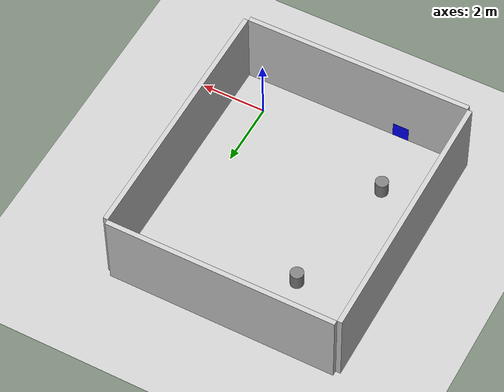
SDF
<sdf version="1.10">
 <world name="default">
  <physics name="1ms" type="ignored">
   <max_step_size>0.0040000000000000001</max_step_size>
   <real_time_factor>1</real_time_factor>
   <real_time_update_rate>200</real_time_update_rate>
  </physics>
  <plugin name="gz::sim::systems::Physics" filename="gz-sim-physics-system"/>
  <plugin name="gz::sim::systems::UserCommands" filename="gz-sim-user-commands-system"/>
  <plugin name="gz::sim::systems::SceneBroadcaster" filename="gz-sim-scene-broadcaster-system"/>
  <plugin name="gz::sim::systems::Contact" filename="gz-sim-contact-system"/>
  <gravity>0 0 -9.8000000000000007</gravity>
  <magnetic_field>6.0000000000000002e-06 2.3e-05 -4.1999999999999998e-05</magnetic_field>
  <atmosphere type="adiabatic"/>
  <scene>
   <ambient>0.400000006 0.400000006 0.400000006 1</ambient>
   <background>0.699999988 0.699999988 0.699999988 1</background>
   <shadows>false</shadows>
  </scene>
  <model name="ground_plane">
   <static>true</static>
   <link name="link">
    <collision name="collision">
     <geometry><plane><normal>0 0 1</normal><size>100 100</size></plane></geometry>
    </collision>
    <visual name="visual">
     <geometry><plane><normal>0 0 1</normal><size>100 100</size></plane></geometry>
     <material>
      <ambient>0.800000012 0.800000012 0.800000012 1</ambient>
      <diffuse>0.800000012 0.800000012 0.800000012 1</diffuse>
     </material>
    </visual>
    <inertial>
     <mass>1</mass>
     <inertia><ixx>1</ixx><ixy>0</ixy><ixz>0</ixz><iyy>1</iyy><iyz>0</iyz><izz>1</izz></inertia>
    </inertial>
   </link>
  </model>
  <model name="room">
   <static>true</static>
   <link name="wall_bottom">
    <pose>-2.5 -1.075 1.25 0 0 0</pose>
    <visual name="visual">
     <geometry><box><size>7 0.14999999999999999 2.5</size></box></geometry>
     <material>
      <ambient>0.699999988 0.699999988 0.699999988 1</ambient>
      <diffuse>0.800000012 0.800000012 0.800000012 1</diffuse>
     </material>
    </visual>
    <collision name="collision"><geometry><box><size>7 0.14999999999999999 2.5</size></box></geometry></collision>
    <inertial>
     <mass>1</mass>
     <inertia><ixx>1</ixx><ixy>0</ixy><ixz>0</ixz><iyy>1</iyy><iyz>0</iyz><izz>1</izz></inertia>
    </inertial>
   </link>
   <link name="wall_top">
    <pose>-2.5 7.0750000000000002 1.25 0 0 0</pose>
    <visual name="visual">
     <geometry><box><size>7 0.14999999999999999 2.5</size></box></geometry>
     <material>
      <ambient>0.699999988 0.699999988 0.699999988 1</ambient>
      <diffuse>0.800000012 0.800000012 0.800000012 1</diffuse>
     </material>
    </visual>
    <collision name="collision"><geometry><box><size>7 0.14999999999999999 2.5</size></box></geometry></collision>
    <inertial>
     <mass>1</mass>
     <inertia><ixx>1</ixx><ixy>0</ixy><ixz>0</ixz><iyy>1</iyy><iyz>0</iyz><izz>1</izz></inertia>
    </inertial>
   </link>
   <link name="wall_right">
    <pose>1.075 3 1.25 0 0 0</pose>
    <visual name="visual">
     <geometry><box><size>0.14999999999999999 8 2.5</size></box></geometry>
     <material>
      <ambient>0.699999988 0.699999988 0.699999988 1</ambient>
      <diffuse>0.800000012 0.800000012 0.800000012 1</diffuse>
     </material>
    </visual>
    <collision name="collision"><geometry><box><size>0.14999999999999999 8 2.5</size></box></geometry></collision>
    <inertial>
     <mass>1</mass>
     <inertia><ixx>1</ixx><ixy>0</ixy><ixz>0</ixz><iyy>1</iyy><iyz>0</iyz><izz>1</izz></inertia>
    </inertial>
   </link>
   <link name="wall_left">
    <pose>-6.0750000000000002 3 1.25 0 0 0</pose>
    <visual name="visual">
     <geometry><box><size>0.14999999999999999 8 2.5</size></box></geometry>
     <material>
      <ambient>0.699999988 0.699999988 0.699999988 1</ambient>
      <diffuse>0.800000012 0.800000012 0.800000012 1</diffuse>
     </material>
    </visual>
    <collision name="collision"><geometry><box><size>0.14999999999999999 8 2.5</size></box></geometry></collision>
    <inertial>
     <mass>1</mass>
     <inertia><ixx>1</ixx><ixy>0</ixy><ixz>0</ixz><iyy>1</iyy><iyz>0</iyz><izz>1</izz></inertia>
    </inertial>
   </link>
  </model>
  <model name="target_green">
   <static>true</static>
   <pose>-5.9984164237976074 3 0.24381899833679199 0 0 0</pose>
   <link name="link">
    <visual name="visual">
     <geometry><box><size>0.01 0.2 0.2</size></box></geometry>
     <material><ambient>0 1 0 1</ambient><diffuse>0 1 0 1</diffuse></material>
    </visual>
    <collision name="collision"><geometry><box><size>0.01 0.2 0.2</size></box></geometry></collision>
    <inertial>
     <mass>1</mass>
     <inertia><ixx>1</ixx><ixy>0</ixy><ixz>0</ixz><iyy>1</iyy><iyz>0</iyz><izz>1</izz></inertia>
    </inertial>
   </link>
  </model>
  <model name="target_red">
   <static>true</static>
   <pose>-2.5000002384185791 6.9930486679077148 0.24409900605678558 0 0 1.5708000357176291</pose>
   <link name="link">
    <visual name="visual">
     <geometry><box><size>0.01 0.5 0.5</size></box></geometry>
     <material><ambient>1 0 0 1</ambient><diffuse>1 0 0 1</diffuse></material>
    </visual>
    <collision name="collision"><geometry><box><size>0.01 0.5 0.5</size></box></geometry></collision>
    <inertial>
     <mass>1</mass>
     <inertia><ixx>1</ixx><ixy>0</ixy><ixz>0</ixz><iyy>1</iyy><iyz>0</iyz><izz>1</izz></inertia>
    </inertial>
   </link>
  </model>
  <model name="target_blue">
   <static>true</static>
   <pose>-4 -0.99378597736358643 0.25586780905723572 0 0 1.5708000357176291</pose>
   <link name="link">
    <visual name="visual">
     <geometry><box><size>0.01 0.5 0.5</size></box></geometry>
     <material><ambient>0 0 1 1</ambient><diffuse>0 0 1 1</diffuse></material>
    </visual>
    <collision name="collision"><geometry><box><size>0.01 0.5 0.5</size></box></geometry></collision>
    <inertial>
     <mass>1</mass>
     <inertia><ixx>1</ixx><ixy>0</ixy><ixz>0</ixz><iyy>1</iyy><iyz>0</iyz><izz>1</izz></inertia>
    </inertial>
   </link>
  </model>
  <model name="obstacle_1">
   <static>true</static>
   <pose>-4.393549919128418 1.0175358057022095 0.25 0 0 0</pose>
   <link name="link">
    <visual name="visual">
     <geometry><cylinder><radius>0.20000000000000001</radius><length>0.5</length></cylinder></geometry>
     <material><ambient>0.400000006 0.400000006 0.400000006 1</ambient><diffuse>0.5 0.5 0.5 1</diffuse></material>
    </visual>
    <collision name="collision">
     <geometry><cylinder><radius>0.20000000000000001</radius><length>0.5</length></cylinder></geometry>
    </collision>
    <inertial>
     <mass>1</mass>
     <inertia><ixx>1</ixx><ixy>0</ixy><ixz>0</ixz><iyy>1</iyy><iyz>0</iyz><izz>1</izz></inertia>
    </inertial>
   </link>
  </model>
  <model name="obstacle_2">
   <static>true</static>
   <pose>-3.723099946975708 4.9362897872924805 0.26980665326118469 0 0 0</pose>
   <link name="link">
    <visual name="visual">
     <geometry><cylinder><radius>0.20000000000000001</radius><length>0.5</length></cylinder></geometry>
     <material><ambient>0.400000006 0.400000006 0.400000006 1</ambient><diffuse>0.5 0.5 0.5 1</diffuse></material>
    </visual>
    <collision name="collision">
     <geometry><cylinder><radius>0.20000000000000001</radius><length>0.5</length></cylinder></geometry>
    </collision>
    <inertial>
     <mass>1</mass>
     <inertia><ixx>1</ixx><ixy>0</ixy><ixz>0</ixz><iyy>1</iyy><iyz>0</iyz><izz>1</izz></inertia>
    </inertial>
   </link>
  </model>
  <light name="sun" type="directional">
   <pose>0 0 10 0 0 0</pose>
   <cast_shadows>false</cast_shadows>
   <intensity>1</intensity>
   <direction>-0.5 0.10000000000000001 -0.90000000000000002</direction>
   <diffuse>0.800000012 0.800000012 0.800000012 1</diffuse>
   <specular>0.200000003 0.200000003 0.200000003 1</specular>
   <attenuation>
    <range>1000</range>
    <linear>0.01</linear>
    <constant>0.90000000000000002</constant>
    <quadratic>0.001</quadratic>
   </attenuation>
   <spot><inner_angle>0</inner_angle><outer_angle>0</outer_angle><falloff>0</falloff></spot>
  </light>
 </world>
</sdf>
